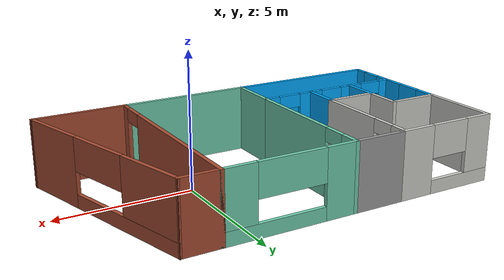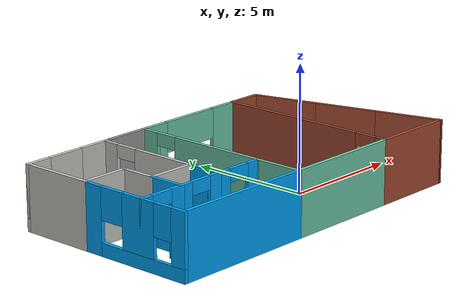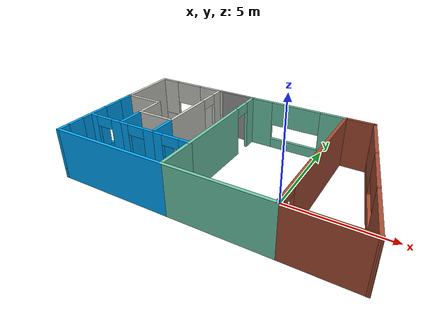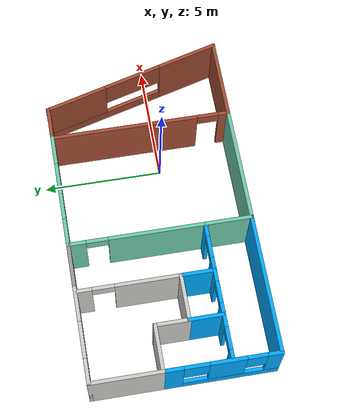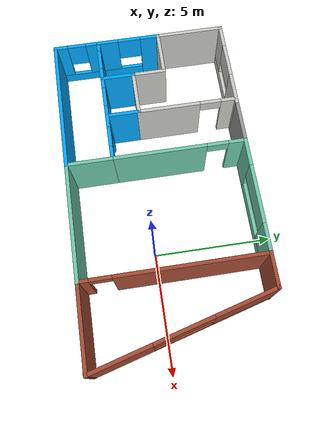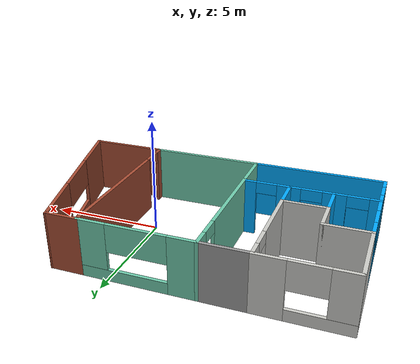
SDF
<?xml version='1.0'?>
<sdf version='1.6'>
  <model name='Building'>
    <pose frame=''>-2.44156 0.655 0 0 -0 0</pose>
    <link name='Wall_0'>
      <collision name='Wall_0_Collision'>
        <geometry>
          <box>
            <size>2 0.15 2.5</size>
          </box>
        </geometry>
        <pose frame=''>0 0 1.25 0 -0 0</pose>
      </collision>
      <visual name='Wall_0_Visual'>
        <pose frame=''>0 0 1.25 0 -0 0</pose>
        <geometry>
          <box>
            <size>2 0.15 2.5</size>
          </box>
        </geometry>
        <material>
          <script>
            <uri>file://media/materials/scripts/gazebo.material</uri>
            <name>Gazebo/Grey</name>
          </script>
          <ambient>1 1 1 1</ambient>
        </material>
        <meta>
          <layer>0</layer>
        </meta>
      </visual>
      <pose frame=''>-2.18344 3.725 0 0 -0 3.14159</pose>
    </link>
    <link name='Wall_1'>
      <pose frame=''>-5.03344 3.725 0 0 -0 3.14159</pose>
      <visual name='Wall_1_Visual_0'>
        <pose frame=''>-1.28113 0 1.25 0 -0 0</pose>
        <geometry>
          <box>
            <size>1.43775 0.15 2.5</size>
          </box>
        </geometry>
        <material>
          <script>
            <uri>file://media/materials/scripts/gazebo.material</uri>
            <name>Gazebo/CeilingTiled</name>
          </script>
          <ambient>1 1 1 1</ambient>
        </material>
        <meta>
          <layer>0</layer>
        </meta>
      </visual>
      <collision name='Wall_1_Collision_0'>
        <geometry>
          <box>
            <size>1.43775 0.15 2.5</size>
          </box>
        </geometry>
        <pose frame=''>-1.28113 0 1.25 0 -0 0</pose>
      </collision>
      <visual name='Wall_1_Visual_1'>
        <pose frame=''>0.718875 0 0.25 0 -0 0</pose>
        <geometry>
          <box>
            <size>2.56225 0.15 0.5</size>
          </box>
        </geometry>
        <material>
          <script>
            <uri>file://media/materials/scripts/gazebo.material</uri>
            <name>Gazebo/CeilingTiled</name>
          </script>
          <ambient>1 1 1 1</ambient>
        </material>
        <meta>
          <layer>0</layer>
        </meta>
      </visual>
      <collision name='Wall_1_Collision_1'>
        <geometry>
          <box>
            <size>2.56225 0.15 0.5</size>
          </box>
        </geometry>
        <pose frame=''>0.718875 0 0.25 0 -0 0</pose>
      </collision>
      <visual name='Wall_1_Visual_2'>
        <pose frame=''>1.46887 0 1.5 0 -0 0</pose>
        <geometry>
          <box>
            <size>1.06225 0.15 2</size>
          </box>
        </geometry>
        <material>
          <script>
            <uri>file://media/materials/scripts/gazebo.material</uri>
            <name>Gazebo/CeilingTiled</name>
          </script>
          <ambient>1 1 1 1</ambient>
        </material>
        <meta>
          <layer>0</layer>
        </meta>
      </visual>
      <collision name='Wall_1_Collision_2'>
        <geometry>
          <box>
            <size>1.06225 0.15 2</size>
          </box>
        </geometry>
        <pose frame=''>1.46887 0 1.5 0 -0 0</pose>
      </collision>
      <visual name='Wall_1_Visual_3'>
        <pose frame=''>0.18775 0 1.9 0 -0 0</pose>
        <geometry>
          <box>
            <size>1.5 0.15 1.2</size>
          </box>
        </geometry>
        <material>
          <script>
            <uri>file://media/materials/scripts/gazebo.material</uri>
            <name>Gazebo/CeilingTiled</name>
          </script>
          <ambient>1 1 1 1</ambient>
        </material>
        <meta>
          <layer>0</layer>
        </meta>
      </visual>
      <collision name='Wall_1_Collision_3'>
        <geometry>
          <box>
            <size>1.5 0.15 1.2</size>
          </box>
        </geometry>
        <pose frame=''>0.18775 0 1.9 0 -0 0</pose>
      </collision>
    </link>
    <link name='Wall_12'>
      <pose frame=''>-1.25844 0.925 0 0 -0 -1.5708</pose>
      <visual name='Wall_12_Visual_0'>
        <pose frame=''>-2.47859 0 1.25 0 -0 0</pose>
        <geometry>
          <box>
            <size>0.792825 0.15 2.5</size>
          </box>
        </geometry>
        <material>
          <script>
            <uri>file://media/materials/scripts/gazebo.material</uri>
            <name>Gazebo/Grey</name>
          </script>
          <ambient>0.435294 0.796078 0.67451 1</ambient>
        </material>
        <meta>
          <layer>0</layer>
        </meta>
      </visual>
      <collision name='Wall_12_Collision_0'>
        <geometry>
          <box>
            <size>0.792825 0.15 2.5</size>
          </box>
        </geometry>
        <pose frame=''>-2.47859 0 1.25 0 -0 0</pose>
      </collision>
      <visual name='Wall_12_Visual_1'>
        <pose frame=''>0.846413 0 1.25 0 -0 0</pose>
        <geometry>
          <box>
            <size>4.05717 0.15 2.5</size>
          </box>
        </geometry>
        <material>
          <script>
            <uri>file://media/materials/scripts/gazebo.material</uri>
            <name>Gazebo/Grey</name>
          </script>
          <ambient>0.435294 0.796078 0.67451 1</ambient>
        </material>
        <meta>
          <layer>0</layer>
        </meta>
      </visual>
      <collision name='Wall_12_Collision_1'>
        <geometry>
          <box>
            <size>4.05717 0.15 2.5</size>
          </box>
        </geometry>
        <pose frame=''>0.846413 0 1.25 0 -0 0</pose>
      </collision>
      <visual name='Wall_12_Visual_2'>
        <pose frame=''>-1.63217 0 2.25 0 -0 0</pose>
        <geometry>
          <box>
            <size>0.9 0.15 0.5</size>
          </box>
        </geometry>
        <material>
          <script>
            <uri>file://media/materials/scripts/gazebo.material</uri>
            <name>Gazebo/Grey</name>
          </script>
          <ambient>0.435294 0.796078 0.67451 1</ambient>
        </material>
        <meta>
          <layer>0</layer>
        </meta>
      </visual>
      <collision name='Wall_12_Collision_2'>
        <geometry>
          <box>
            <size>0.9 0.15 0.5</size>
          </box>
        </geometry>
        <pose frame=''>-1.63217 0 2.25 0 -0 0</pose>
      </collision>
    </link>
    <link name='Wall_14'>
      <collision name='Wall_14_Collision'>
        <geometry>
          <box>
            <size>2 0.15 2.5</size>
          </box>
        </geometry>
        <pose frame=''>0 0 1.25 0 -0 0</pose>
      </collision>
      <visual name='Wall_14_Visual'>
        <pose frame=''>0 0 1.25 0 -0 0</pose>
        <geometry>
          <box>
            <size>2 0.15 2.5</size>
          </box>
        </geometry>
        <material>
          <script>
            <uri>file://media/materials/scripts/gazebo.material</uri>
            <name>Gazebo/Grey</name>
          </script>
          <ambient>0.435294 0.796078 0.67451 1</ambient>
        </material>
        <meta>
          <layer>0</layer>
        </meta>
      </visual>
      <pose frame=''>-1.25844 -2.8 0 0 -0 -1.5708</pose>
    </link>
    <link name='Wall_15'>
      <collision name='Wall_15_Collision'>
        <geometry>
          <box>
            <size>5.75 0.15 2.5</size>
          </box>
        </geometry>
        <pose frame=''>0 0 1.25 0 -0 0</pose>
      </collision>
      <visual name='Wall_15_Visual'>
        <pose frame=''>0 0 1.25 0 -0 0</pose>
        <geometry>
          <box>
            <size>5.75 0.15 2.5</size>
          </box>
        </geometry>
        <material>
          <script>
            <uri>file://media/materials/scripts/gazebo.material</uri>
            <name>Gazebo/Grey</name>
          </script>
          <ambient>0 0.666667 1 1</ambient>
        </material>
        <meta>
          <layer>0</layer>
        </meta>
      </visual>
      <pose frame=''>-4.05844 -3.725 0 0 -0 3.14159</pose>
    </link>
    <link name='Wall_17'>
      <pose frame=''>-6.95844 -1.425 0 0 -0 -1.5708</pose>
      <visual name='Wall_17_Visual_0'>
        <pose frame=''>-1.93416 0 1.25 0 -0 0</pose>
        <geometry>
          <box>
            <size>0.881675 0.15 2.5</size>
          </box>
        </geometry>
        <material>
          <script>
            <uri>file://media/materials/scripts/gazebo.material</uri>
            <name>Gazebo/Grey</name>
          </script>
          <ambient>0 0.666667 1 1</ambient>
        </material>
        <meta>
          <layer>0</layer>
        </meta>
      </visual>
      <collision name='Wall_17_Collision_0'>
        <geometry>
          <box>
            <size>0.881675 0.15 2.5</size>
          </box>
        </geometry>
        <pose frame=''>-1.93416 0 1.25 0 -0 0</pose>
      </collision>
      <visual name='Wall_17_Visual_1'>
        <pose frame=''>0.440838 0 0.25 0 -0 0</pose>
        <geometry>
          <box>
            <size>3.86833 0.15 0.5</size>
          </box>
        </geometry>
        <material>
          <script>
            <uri>file://media/materials/scripts/gazebo.material</uri>
            <name>Gazebo/Grey</name>
          </script>
          <ambient>0 0.666667 1 1</ambient>
        </material>
        <meta>
          <layer>0</layer>
        </meta>
      </visual>
      <collision name='Wall_17_Collision_1'>
        <geometry>
          <box>
            <size>3.86833 0.15 0.5</size>
          </box>
        </geometry>
        <pose frame=''>0.440838 0 0.25 0 -0 0</pose>
      </collision>
      <visual name='Wall_17_Visual_2'>
        <pose frame=''>0.2337 0 1.5 0 -0 0</pose>
        <geometry>
          <box>
            <size>1.45405 0.15 2</size>
          </box>
        </geometry>
        <material>
          <script>
            <uri>file://media/materials/scripts/gazebo.material</uri>
            <name>Gazebo/Grey</name>
          </script>
          <ambient>0 0.666667 1 1</ambient>
        </material>
        <meta>
          <layer>0</layer>
        </meta>
      </visual>
      <collision name='Wall_17_Collision_2'>
        <geometry>
          <box>
            <size>1.45405 0.15 2</size>
          </box>
        </geometry>
        <pose frame=''>0.2337 0 1.5 0 -0 0</pose>
      </collision>
      <visual name='Wall_17_Visual_3'>
        <pose frame=''>2.06786 0 1.5 0 -0 0</pose>
        <geometry>
          <box>
            <size>0.614275 0.15 2</size>
          </box>
        </geometry>
        <material>
          <script>
            <uri>file://media/materials/scripts/gazebo.material</uri>
            <name>Gazebo/Grey</name>
          </script>
          <ambient>0 0.666667 1 1</ambient>
        </material>
        <meta>
          <layer>0</layer>
        </meta>
      </visual>
      <collision name='Wall_17_Collision_3'>
        <geometry>
          <box>
            <size>0.614275 0.15 2</size>
          </box>
        </geometry>
        <pose frame=''>2.06786 0 1.5 0 -0 0</pose>
      </collision>
      <visual name='Wall_17_Visual_4'>
        <pose frame=''>-0.993325 0 1.9 0 -0 0</pose>
        <geometry>
          <box>
            <size>1 0.15 1.2</size>
          </box>
        </geometry>
        <material>
          <script>
            <uri>file://media/materials/scripts/gazebo.material</uri>
            <name>Gazebo/Grey</name>
          </script>
          <ambient>0 0.666667 1 1</ambient>
        </material>
        <meta>
          <layer>0</layer>
        </meta>
      </visual>
      <collision name='Wall_17_Collision_4'>
        <geometry>
          <box>
            <size>1 0.15 1.2</size>
          </box>
        </geometry>
        <pose frame=''>-0.993325 0 1.9 0 -0 0</pose>
      </collision>
      <visual name='Wall_17_Visual_5'>
        <pose frame=''>1.36072 0 1.9 0 -0 0</pose>
        <geometry>
          <box>
            <size>0.8 0.15 1.2</size>
          </box>
        </geometry>
        <material>
          <script>
            <uri>file://media/materials/scripts/gazebo.material</uri>
            <name>Gazebo/Grey</name>
          </script>
          <ambient>0 0.666667 1 1</ambient>
        </material>
        <meta>
          <layer>0</layer>
        </meta>
      </visual>
      <collision name='Wall_17_Collision_5'>
        <geometry>
          <box>
            <size>0.8 0.15 1.2</size>
          </box>
        </geometry>
        <pose frame=''>1.36072 0 1.9 0 -0 0</pose>
      </collision>
    </link>
    <link name='Wall_19'>
      <pose frame=''>-4.18344 -1.825 0 0 -0 3.14159</pose>
      <visual name='Wall_19_Visual_0'>
        <pose frame=''>-0.7219 0 1.25 0 -0 0</pose>
        <geometry>
          <box>
            <size>0.5562 0.15 2.5</size>
          </box>
        </geometry>
        <material>
          <script>
            <uri>file://media/materials/scripts/gazebo.material</uri>
            <name>Gazebo/Grey</name>
          </script>
          <ambient>0 0.666667 1 1</ambient>
        </material>
        <meta>
          <layer>0</layer>
        </meta>
      </visual>
      <collision name='Wall_19_Collision_0'>
        <geometry>
          <box>
            <size>0.5562 0.15 2.5</size>
          </box>
        </geometry>
        <pose frame=''>-0.7219 0 1.25 0 -0 0</pose>
      </collision>
      <visual name='Wall_19_Visual_1'>
        <pose frame=''>0.7281 0 1.25 0 -0 0</pose>
        <geometry>
          <box>
            <size>0.5438 0.15 2.5</size>
          </box>
        </geometry>
        <material>
          <script>
            <uri>file://media/materials/scripts/gazebo.material</uri>
            <name>Gazebo/Grey</name>
          </script>
          <ambient>0 0.666667 1 1</ambient>
        </material>
        <meta>
          <layer>0</layer>
        </meta>
      </visual>
      <collision name='Wall_19_Collision_1'>
        <geometry>
          <box>
            <size>0.5438 0.15 2.5</size>
          </box>
        </geometry>
        <pose frame=''>0.7281 0 1.25 0 -0 0</pose>
      </collision>
      <visual name='Wall_19_Visual_2'>
        <pose frame=''>0.0062 0 2.25 0 -0 0</pose>
        <geometry>
          <box>
            <size>0.9 0.15 0.5</size>
          </box>
        </geometry>
        <material>
          <script>
            <uri>file://media/materials/scripts/gazebo.material</uri>
            <name>Gazebo/Grey</name>
          </script>
          <ambient>0 0.666667 1 1</ambient>
        </material>
        <meta>
          <layer>0</layer>
        </meta>
      </visual>
      <collision name='Wall_19_Collision_2'>
        <geometry>
          <box>
            <size>0.9 0.15 0.5</size>
          </box>
        </geometry>
        <pose frame=''>0.0062 0 2.25 0 -0 0</pose>
      </collision>
    </link>
    <link name='Wall_2'>
      <collision name='Wall_2_Collision'>
        <geometry>
          <box>
            <size>3 0.15 2.5</size>
          </box>
        </geometry>
        <pose frame=''>0 0 1.25 0 -0 0</pose>
      </collision>
      <visual name='Wall_2_Visual'>
        <pose frame=''>0 0 1.25 0 -0 0</pose>
        <geometry>
          <box>
            <size>3 0.15 2.5</size>
          </box>
        </geometry>
        <material>
          <script>
            <uri>file://media/materials/scripts/gazebo.material</uri>
            <name>Gazebo/CeilingTiled</name>
          </script>
          <ambient>1 1 1 1</ambient>
        </material>
        <meta>
          <layer>0</layer>
        </meta>
      </visual>
      <pose frame=''>-6.95844 2.3 0 0 -0 -1.5708</pose>
    </link>
    <link name='Wall_20'>
      <pose frame=''>-6.03344 -1.825 0 0 -0 3.14159</pose>
      <visual name='Wall_20_Visual_0'>
        <pose frame=''>-0.701313 0 1.25 0 -0 0</pose>
        <geometry>
          <box>
            <size>0.597375 0.15 2.5</size>
          </box>
        </geometry>
        <material>
          <script>
            <uri>file://media/materials/scripts/gazebo.material</uri>
            <name>Gazebo/Grey</name>
          </script>
          <ambient>0 0.666667 1 1</ambient>
        </material>
        <meta>
          <layer>0</layer>
        </meta>
      </visual>
      <collision name='Wall_20_Collision_0'>
        <geometry>
          <box>
            <size>0.597375 0.15 2.5</size>
          </box>
        </geometry>
        <pose frame=''>-0.701313 0 1.25 0 -0 0</pose>
      </collision>
      <visual name='Wall_20_Visual_1'>
        <pose frame=''>0.748687 0 1.25 0 -0 0</pose>
        <geometry>
          <box>
            <size>0.502625 0.15 2.5</size>
          </box>
        </geometry>
        <material>
          <script>
            <uri>file://media/materials/scripts/gazebo.material</uri>
            <name>Gazebo/Grey</name>
          </script>
          <ambient>0 0.666667 1 1</ambient>
        </material>
        <meta>
          <layer>0</layer>
        </meta>
      </visual>
      <collision name='Wall_20_Collision_1'>
        <geometry>
          <box>
            <size>0.502625 0.15 2.5</size>
          </box>
        </geometry>
        <pose frame=''>0.748687 0 1.25 0 -0 0</pose>
      </collision>
      <visual name='Wall_20_Visual_2'>
        <pose frame=''>0.047375 0 2.25 0 -0 0</pose>
        <geometry>
          <box>
            <size>0.9 0.15 0.5</size>
          </box>
        </geometry>
        <material>
          <script>
            <uri>file://media/materials/scripts/gazebo.material</uri>
            <name>Gazebo/Grey</name>
          </script>
          <ambient>0 0.666667 1 1</ambient>
        </material>
        <meta>
          <layer>0</layer>
        </meta>
      </visual>
      <collision name='Wall_20_Collision_2'>
        <geometry>
          <box>
            <size>0.9 0.15 0.5</size>
          </box>
        </geometry>
        <pose frame=''>0.047375 0 2.25 0 -0 0</pose>
      </collision>
    </link>
    <link name='Wall_22'>
      <collision name='Wall_22_Collision'>
        <geometry>
          <box>
            <size>1.5 0.15 2.5</size>
          </box>
        </geometry>
        <pose frame=''>0 0 1.25 0 -0 0</pose>
      </collision>
      <visual name='Wall_22_Visual'>
        <pose frame=''>0 0 1.25 0 -0 0</pose>
        <geometry>
          <box>
            <size>1.5 0.15 2.5</size>
          </box>
        </geometry>
        <material>
          <script>
            <uri>file://media/materials/scripts/gazebo.material</uri>
            <name>Gazebo/Grey</name>
          </script>
          <ambient>0 0.666667 1 1</ambient>
        </material>
        <meta>
          <layer>0</layer>
        </meta>
      </visual>
      <pose frame=''>-5.10844 -1.15 0 0 -0 -1.5708</pose>
    </link>
    <link name='Wall_25'>
      <pose frame=''>1.16656 3.725 0 0 -0 0</pose>
      <visual name='Wall_25_Visual_0'>
        <pose frame=''>-1.88826 0 1.25 0 -0 0</pose>
        <geometry>
          <box>
            <size>1.22348 0.15 2.5</size>
          </box>
        </geometry>
        <material>
          <script>
            <uri>file://media/materials/scripts/gazebo.material</uri>
            <name>Gazebo/Grey</name>
          </script>
          <ambient>0.435294 0.796078 0.67451 1</ambient>
        </material>
        <meta>
          <layer>0</layer>
        </meta>
      </visual>
      <collision name='Wall_25_Collision_0'>
        <geometry>
          <box>
            <size>1.22348 0.15 2.5</size>
          </box>
        </geometry>
        <pose frame=''>-1.88826 0 1.25 0 -0 0</pose>
      </collision>
      <visual name='Wall_25_Visual_1'>
        <pose frame=''>0.611737 0 0.25 0 -0 0</pose>
        <geometry>
          <box>
            <size>3.77652 0.15 0.5</size>
          </box>
        </geometry>
        <material>
          <script>
            <uri>file://media/materials/scripts/gazebo.material</uri>
            <name>Gazebo/Grey</name>
          </script>
          <ambient>0.435294 0.796078 0.67451 1</ambient>
        </material>
        <meta>
          <layer>0</layer>
        </meta>
      </visual>
      <collision name='Wall_25_Collision_1'>
        <geometry>
          <box>
            <size>3.77652 0.15 0.5</size>
          </box>
        </geometry>
        <pose frame=''>0.611737 0 0.25 0 -0 0</pose>
      </collision>
      <visual name='Wall_25_Visual_2'>
        <pose frame=''>1.86174 0 1.5 0 -0 0</pose>
        <geometry>
          <box>
            <size>1.27652 0.15 2</size>
          </box>
        </geometry>
        <material>
          <script>
            <uri>file://media/materials/scripts/gazebo.material</uri>
            <name>Gazebo/Grey</name>
          </script>
          <ambient>0.435294 0.796078 0.67451 1</ambient>
        </material>
        <meta>
          <layer>0</layer>
        </meta>
      </visual>
      <collision name='Wall_25_Collision_2'>
        <geometry>
          <box>
            <size>1.27652 0.15 2</size>
          </box>
        </geometry>
        <pose frame=''>1.86174 0 1.5 0 -0 0</pose>
      </collision>
      <visual name='Wall_25_Visual_3'>
        <pose frame=''>-0.026525 0 1.9 0 -0 0</pose>
        <geometry>
          <box>
            <size>2.5 0.15 1.2</size>
          </box>
        </geometry>
        <material>
          <script>
            <uri>file://media/materials/scripts/gazebo.material</uri>
            <name>Gazebo/Grey</name>
          </script>
          <ambient>0.435294 0.796078 0.67451 1</ambient>
        </material>
        <meta>
          <layer>0</layer>
        </meta>
      </visual>
      <collision name='Wall_25_Collision_3'>
        <geometry>
          <box>
            <size>2.5 0.15 1.2</size>
          </box>
        </geometry>
        <pose frame=''>-0.026525 0 1.9 0 -0 0</pose>
      </collision>
    </link>
    <link name='Wall_26'>
      <pose frame=''>3.59156 0.05 0 0 -0 -1.5708</pose>
      <visual name='Wall_26_Visual_0'>
        <pose frame=''>-0.649075 0 1.25 0 -0 0</pose>
        <geometry>
          <box>
            <size>6.20185 0.15 2.5</size>
          </box>
        </geometry>
        <material>
          <script>
            <uri>file://media/materials/scripts/gazebo.material</uri>
            <name>Gazebo/Bricks</name>
          </script>
          <ambient>1 1 1 1</ambient>
        </material>
        <meta>
          <layer>0</layer>
        </meta>
      </visual>
      <collision name='Wall_26_Collision_0'>
        <geometry>
          <box>
            <size>6.20185 0.15 2.5</size>
          </box>
        </geometry>
        <pose frame=''>-0.649075 0 1.25 0 -0 0</pose>
      </collision>
      <visual name='Wall_26_Visual_1'>
        <pose frame=''>3.55092 0 1.25 0 -0 0</pose>
        <geometry>
          <box>
            <size>0.39815 0.15 2.5</size>
          </box>
        </geometry>
        <material>
          <script>
            <uri>file://media/materials/scripts/gazebo.material</uri>
            <name>Gazebo/Bricks</name>
          </script>
          <ambient>1 1 1 1</ambient>
        </material>
        <meta>
          <layer>0</layer>
        </meta>
      </visual>
      <collision name='Wall_26_Collision_1'>
        <geometry>
          <box>
            <size>0.39815 0.15 2.5</size>
          </box>
        </geometry>
        <pose frame=''>3.55092 0 1.25 0 -0 0</pose>
      </collision>
      <visual name='Wall_26_Visual_2'>
        <pose frame=''>2.90185 0 2.25 0 -0 0</pose>
        <geometry>
          <box>
            <size>0.9 0.15 0.5</size>
          </box>
        </geometry>
        <material>
          <script>
            <uri>file://media/materials/scripts/gazebo.material</uri>
            <name>Gazebo/Bricks</name>
          </script>
          <ambient>1 1 1 1</ambient>
        </material>
        <meta>
          <layer>0</layer>
        </meta>
      </visual>
      <collision name='Wall_26_Collision_2'>
        <geometry>
          <box>
            <size>0.9 0.15 0.5</size>
          </box>
        </geometry>
        <pose frame=''>2.90185 0 2.25 0 -0 0</pose>
      </collision>
    </link>
    <link name='Wall_28'>
      <collision name='Wall_28_Collision'>
        <geometry>
          <box>
            <size>5 0.15 2.5</size>
          </box>
        </geometry>
        <pose frame=''>0 0 1.25 0 -0 0</pose>
      </collision>
      <visual name='Wall_28_Visual'>
        <pose frame=''>0 0 1.25 0 -0 0</pose>
        <geometry>
          <box>
            <size>5 0.15 2.5</size>
          </box>
        </geometry>
        <material>
          <script>
            <uri>file://media/materials/scripts/gazebo.material</uri>
            <name>Gazebo/Grey</name>
          </script>
          <ambient>0.435294 0.796078 0.67451 1</ambient>
        </material>
        <meta>
          <layer>0</layer>
        </meta>
      </visual>
      <pose frame=''>1.16656 -3.725 0 0 -0 0</pose>
    </link>
    <link name='Wall_29'>
      <collision name='Wall_29_Collision'>
        <geometry>
          <box>
            <size>3.5 0.15 2.5</size>
          </box>
        </geometry>
        <pose frame=''>0 0 1.25 0 -0 0</pose>
      </collision>
      <visual name='Wall_29_Visual'>
        <pose frame=''>0 0 1.25 0 -0 0</pose>
        <geometry>
          <box>
            <size>3.5 0.15 2.5</size>
          </box>
        </geometry>
        <material>
          <script>
            <uri>file://media/materials/scripts/gazebo.material</uri>
            <name>Gazebo/Bricks</name>
          </script>
          <ambient>1 1 1 1</ambient>
        </material>
        <meta>
          <layer>0</layer>
        </meta>
      </visual>
      <pose frame=''>5.26656 -3.725 0 0 -0 0</pose>
    </link>
    <link name='Wall_3'>
      <collision name='Wall_3_Collision'>
        <geometry>
          <box>
            <size>2 0.15 2.5</size>
          </box>
        </geometry>
        <pose frame=''>0 0 1.25 0 -0 0</pose>
      </collision>
      <visual name='Wall_3_Visual'>
        <pose frame=''>0 0 1.25 0 -0 0</pose>
        <geometry>
          <box>
            <size>2 0.15 2.5</size>
          </box>
        </geometry>
        <material>
          <script>
            <uri>file://media/materials/scripts/gazebo.material</uri>
            <name>Gazebo/CeilingTiled</name>
          </script>
          <ambient>1 1 1 1</ambient>
        </material>
        <meta>
          <layer>0</layer>
        </meta>
      </visual>
      <pose frame=''>-6.03344 0.875 0 0 -0 0</pose>
    </link>
    <link name='Wall_30'>
      <pose frame=''>5.94156 0 0 0 -0 1.83307</pose>
      <visual name='Wall_30_Visual_0'>
        <pose frame=''>-2.60007 0 1.25 0 -0 0</pose>
        <geometry>
          <box>
            <size>2.66364 0.15 2.5</size>
          </box>
        </geometry>
        <material>
          <script>
            <uri>file://media/materials/scripts/gazebo.material</uri>
            <name>Gazebo/Bricks</name>
          </script>
          <ambient>1 1 1 1</ambient>
        </material>
        <meta>
          <layer>0</layer>
        </meta>
      </visual>
      <collision name='Wall_30_Collision_0'>
        <geometry>
          <box>
            <size>2.66364 0.15 2.5</size>
          </box>
        </geometry>
        <pose frame=''>-2.60007 0 1.25 0 -0 0</pose>
      </collision>
      <visual name='Wall_30_Visual_1'>
        <pose frame=''>1.33182 0 0.25 0 -0 0</pose>
        <geometry>
          <box>
            <size>5.20015 0.15 0.5</size>
          </box>
        </geometry>
        <material>
          <script>
            <uri>file://media/materials/scripts/gazebo.material</uri>
            <name>Gazebo/Bricks</name>
          </script>
          <ambient>1 1 1 1</ambient>
        </material>
        <meta>
          <layer>0</layer>
        </meta>
      </visual>
      <collision name='Wall_30_Collision_1'>
        <geometry>
          <box>
            <size>5.20015 0.15 0.5</size>
          </box>
        </geometry>
        <pose frame=''>1.33182 0 0.25 0 -0 0</pose>
      </collision>
      <visual name='Wall_30_Visual_2'>
        <pose frame=''>2.58182 0 1.5 0 -0 0</pose>
        <geometry>
          <box>
            <size>2.70015 0.15 2</size>
          </box>
        </geometry>
        <material>
          <script>
            <uri>file://media/materials/scripts/gazebo.material</uri>
            <name>Gazebo/Bricks</name>
          </script>
          <ambient>1 1 1 1</ambient>
        </material>
        <meta>
          <layer>0</layer>
        </meta>
      </visual>
      <collision name='Wall_30_Collision_2'>
        <geometry>
          <box>
            <size>2.70015 0.15 2</size>
          </box>
        </geometry>
        <pose frame=''>2.58182 0 1.5 0 -0 0</pose>
      </collision>
      <visual name='Wall_30_Visual_3'>
        <pose frame=''>-0.018252 0 1.9 0 -0 0</pose>
        <geometry>
          <box>
            <size>2.5 0.15 1.2</size>
          </box>
        </geometry>
        <material>
          <script>
            <uri>file://media/materials/scripts/gazebo.material</uri>
            <name>Gazebo/Bricks</name>
          </script>
          <ambient>1 1 1 1</ambient>
        </material>
        <meta>
          <layer>0</layer>
        </meta>
      </visual>
      <collision name='Wall_30_Collision_3'>
        <geometry>
          <box>
            <size>2.5 0.15 1.2</size>
          </box>
        </geometry>
        <pose frame=''>-0.018252 0 1.9 0 -0 0</pose>
      </collision>
    </link>
    <link name='Wall_35'>
      <collision name='Wall_35_Collision'>
        <geometry>
          <box>
            <size>1.5 0.15 2.5</size>
          </box>
        </geometry>
        <pose frame=''>0 0 1.25 0 -0 0</pose>
      </collision>
      <visual name='Wall_35_Visual'>
        <pose frame=''>0 0 1.25 0 -0 0</pose>
        <geometry>
          <box>
            <size>1.5 0.15 2.5</size>
          </box>
        </geometry>
        <material>
          <script>
            <uri>file://media/materials/scripts/gazebo.material</uri>
            <name>Gazebo/Bricks</name>
          </script>
          <ambient>1 1 1 1</ambient>
        </material>
        <meta>
          <layer>0</layer>
        </meta>
      </visual>
      <pose frame=''>4.26656 3.725 0 0 -0 3.14159</pose>
    </link>
    <link name='Wall_4'>
      <collision name='Wall_4_Collision'>
        <geometry>
          <box>
            <size>1.5 0.15 2.5</size>
          </box>
        </geometry>
        <pose frame=''>0 0 1.25 0 -0 0</pose>
      </collision>
      <visual name='Wall_4_Visual'>
        <pose frame=''>0 0 1.25 0 -0 0</pose>
        <geometry>
          <box>
            <size>1.5 0.15 2.5</size>
          </box>
        </geometry>
        <material>
          <script>
            <uri>file://media/materials/scripts/gazebo.material</uri>
            <name>Gazebo/CeilingTiled</name>
          </script>
          <ambient>1 1 1 1</ambient>
        </material>
        <meta>
          <layer>0</layer>
        </meta>
      </visual>
      <pose frame=''>-5.10844 0.2 0 0 -0 -1.5708</pose>
    </link>
    <link name='Wall_5'>
      <collision name='Wall_5_Collision'>
        <geometry>
          <box>
            <size>2 0.15 2.5</size>
          </box>
        </geometry>
        <pose frame=''>0 0 1.25 0 -0 0</pose>
      </collision>
      <visual name='Wall_5_Visual'>
        <pose frame=''>0 0 1.25 0 -0 0</pose>
        <geometry>
          <box>
            <size>2 0.15 2.5</size>
          </box>
        </geometry>
        <material>
          <script>
            <uri>file://media/materials/scripts/gazebo.material</uri>
            <name>Gazebo/CeilingTiled</name>
          </script>
          <ambient>1 1 1 1</ambient>
        </material>
        <meta>
          <layer>0</layer>
        </meta>
      </visual>
      <pose frame=''>-4.18344 -0.475 0 0 -0 0</pose>
    </link>
    <link name='Wall_6'>
      <pose frame=''>-3.25844 1.575 0 0 -0 1.5708</pose>
      <visual name='Wall_6_Visual_0'>
        <pose frame=''>-0.769963 0 1.25 0 -0 0</pose>
        <geometry>
          <box>
            <size>2.71007 0.15 2.5</size>
          </box>
        </geometry>
        <material>
          <script>
            <uri>file://media/materials/scripts/gazebo.material</uri>
            <name>Gazebo/CeilingTiled</name>
          </script>
          <ambient>1 1 1 1</ambient>
        </material>
        <meta>
          <layer>0</layer>
        </meta>
      </visual>
      <collision name='Wall_6_Collision_0'>
        <geometry>
          <box>
            <size>2.71007 0.15 2.5</size>
          </box>
        </geometry>
        <pose frame=''>-0.769963 0 1.25 0 -0 0</pose>
      </collision>
      <visual name='Wall_6_Visual_1'>
        <pose frame=''>1.80504 0 1.25 0 -0 0</pose>
        <geometry>
          <box>
            <size>0.639925 0.15 2.5</size>
          </box>
        </geometry>
        <material>
          <script>
            <uri>file://media/materials/scripts/gazebo.material</uri>
            <name>Gazebo/CeilingTiled</name>
          </script>
          <ambient>1 1 1 1</ambient>
        </material>
        <meta>
          <layer>0</layer>
        </meta>
      </visual>
      <collision name='Wall_6_Collision_1'>
        <geometry>
          <box>
            <size>0.639925 0.15 2.5</size>
          </box>
        </geometry>
        <pose frame=''>1.80504 0 1.25 0 -0 0</pose>
      </collision>
      <visual name='Wall_6_Visual_2'>
        <pose frame=''>1.03507 0 2.25 0 -0 0</pose>
        <geometry>
          <box>
            <size>0.9 0.15 0.5</size>
          </box>
        </geometry>
        <material>
          <script>
            <uri>file://media/materials/scripts/gazebo.material</uri>
            <name>Gazebo/CeilingTiled</name>
          </script>
          <ambient>1 1 1 1</ambient>
        </material>
        <meta>
          <layer>0</layer>
        </meta>
      </visual>
      <collision name='Wall_6_Collision_2'>
        <geometry>
          <box>
            <size>0.9 0.15 0.5</size>
          </box>
        </geometry>
        <pose frame=''>1.03507 0 2.25 0 -0 0</pose>
      </collision>
    </link>
    <link name='Wall_8'>
      <collision name='Wall_8_Collision'>
        <geometry>
          <box>
            <size>1.5 0.15 2.5</size>
          </box>
        </geometry>
        <pose frame=''>0 0 1.25 0 -0 0</pose>
      </collision>
      <visual name='Wall_8_Visual'>
        <pose frame=''>0 0 1.25 0 -0 0</pose>
        <geometry>
          <box>
            <size>1.5 0.15 2.5</size>
          </box>
        </geometry>
        <material>
          <script>
            <uri>file://media/materials/scripts/gazebo.material</uri>
            <name>Gazebo/Grey</name>
          </script>
          <ambient>0 0.666667 1 1</ambient>
        </material>
        <meta>
          <layer>0</layer>
        </meta>
      </visual>
      <pose frame=''>-3.25844 -1.15 0 0 -0 -1.5708</pose>
    </link>
    <link name='Wall_9'>
      <pose frame=''>-2.33344 -1.825 0 0 -0 0</pose>
      <visual name='Wall_9_Visual_0'>
        <pose frame=''>-0.694287 0 1.25 0 -0 0</pose>
        <geometry>
          <box>
            <size>0.611425 0.15 2.5</size>
          </box>
        </geometry>
        <material>
          <script>
            <uri>file://media/materials/scripts/gazebo.material</uri>
            <name>Gazebo/Grey</name>
          </script>
          <ambient>0 0.666667 1 1</ambient>
        </material>
        <meta>
          <layer>0</layer>
        </meta>
      </visual>
      <collision name='Wall_9_Collision_0'>
        <geometry>
          <box>
            <size>0.611425 0.15 2.5</size>
          </box>
        </geometry>
        <pose frame=''>-0.694287 0 1.25 0 -0 0</pose>
      </collision>
      <visual name='Wall_9_Visual_1'>
        <pose frame=''>0.755713 0 1.25 0 -0 0</pose>
        <geometry>
          <box>
            <size>0.488575 0.15 2.5</size>
          </box>
        </geometry>
        <material>
          <script>
            <uri>file://media/materials/scripts/gazebo.material</uri>
            <name>Gazebo/Grey</name>
          </script>
          <ambient>0 0.666667 1 1</ambient>
        </material>
        <meta>
          <layer>0</layer>
        </meta>
      </visual>
      <collision name='Wall_9_Collision_1'>
        <geometry>
          <box>
            <size>0.488575 0.15 2.5</size>
          </box>
        </geometry>
        <pose frame=''>0.755713 0 1.25 0 -0 0</pose>
      </collision>
      <visual name='Wall_9_Visual_2'>
        <pose frame=''>0.061425 0 2.25 0 -0 0</pose>
        <geometry>
          <box>
            <size>0.9 0.15 0.5</size>
          </box>
        </geometry>
        <material>
          <script>
            <uri>file://media/materials/scripts/gazebo.material</uri>
            <name>Gazebo/Grey</name>
          </script>
          <ambient>0 0.666667 1 1</ambient>
        </material>
        <meta>
          <layer>0</layer>
        </meta>
      </visual>
      <collision name='Wall_9_Collision_2'>
        <geometry>
          <box>
            <size>0.9 0.15 0.5</size>
          </box>
        </geometry>
        <pose frame=''>0.061425 0 2.25 0 -0 0</pose>
      </collision>
    </link>
    <static>1</static>
  </model>
</sdf>
